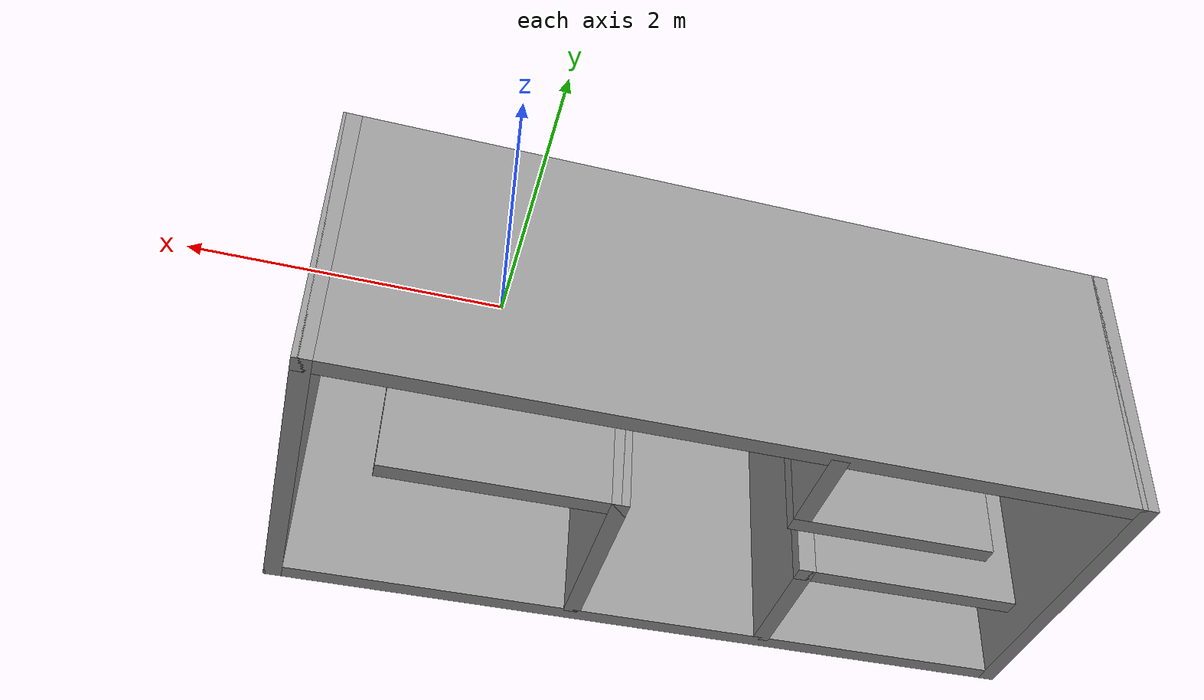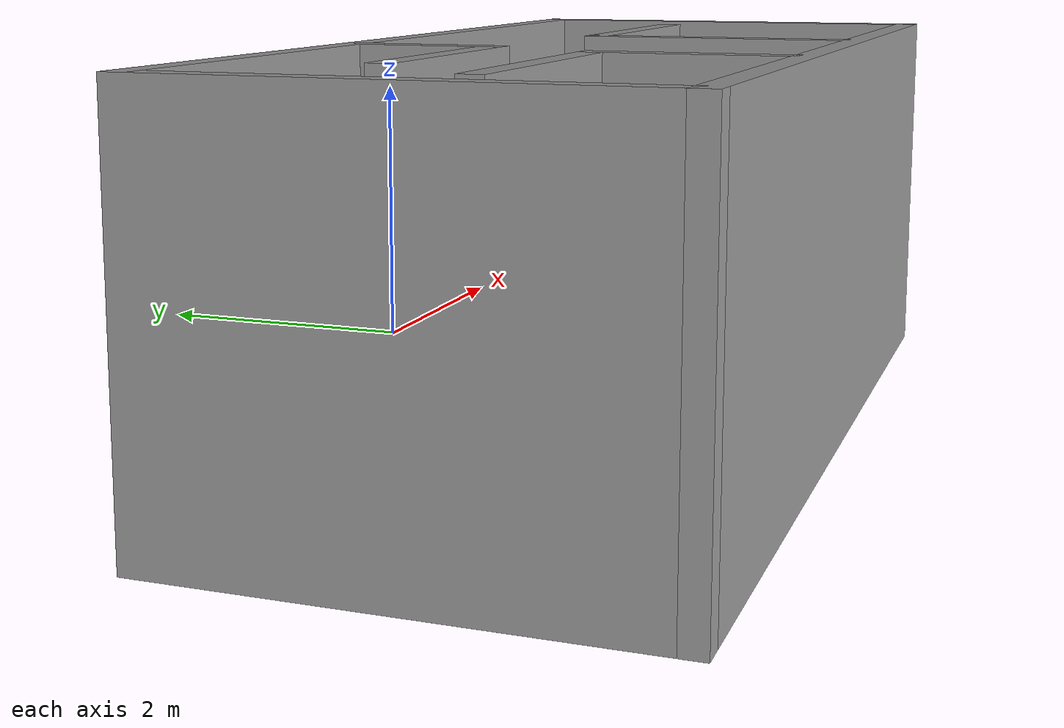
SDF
<?xml version='1.0'?>
<sdf version='1.7'>
  <model name='Room'>
    <pose>-2.08 -1.9625 0 0 -0 0</pose>
    <link name='Wall_1'>
      <collision name='Wall_1_Collision'>
        <geometry>
          <box>
            <size>6.75 0.15 2.5</size>
          </box>
        </geometry>
        <pose>0 0 1.25 0 -0 0</pose>
      </collision>
      <visual name='Wall_1_Visual'>
        <pose>0 0 1.25 0 -0 0</pose>
        <geometry>
          <box>
            <size>6.75 0.15 2.5</size>
          </box>
        </geometry>
        <material>
          <script>
            <uri>file://media/materials/scripts/gazebo.material</uri>
            <name>Gazebo/Grey</name>
          </script>
          <ambient>1 1 1 1</ambient>
        </material>
        <meta>
          <layer>0</layer>
        </meta>
      </visual>
      <pose>0 0.9625 0 0 -0 0</pose>
    </link>
    <link name='Wall_10'>
      <collision name='Wall_10_Collision'>
        <geometry>
          <box>
            <size>2 0.15 2.5</size>
          </box>
        </geometry>
        <pose>0 0 1.25 0 -0 0</pose>
      </collision>
      <visual name='Wall_10_Visual'>
        <pose>0 0 1.25 0 -0 0</pose>
        <geometry>
          <box>
            <size>2 0.15 2.5</size>
          </box>
        </geometry>
        <material>
          <script>
            <uri>file://media/materials/scripts/gazebo.material</uri>
            <name>Gazebo/Grey</name>
          </script>
          <ambient>1 1 1 1</ambient>
        </material>
        <meta>
          <layer>0</layer>
        </meta>
      </visual>
      <pose>-1.935 -0.6775 0 0 -0 3.14159</pose>
    </link>
    <link name='Wall_13'>
      <collision name='Wall_13_Collision'>
        <geometry>
          <box>
            <size>1.75 0.15 2.5</size>
          </box>
        </geometry>
        <pose>0 0 1.25 0 -0 0</pose>
      </collision>
      <visual name='Wall_13_Visual'>
        <pose>0 0 1.25 0 -0 0</pose>
        <geometry>
          <box>
            <size>1.75 0.15 2.5</size>
          </box>
        </geometry>
        <material>
          <script>
            <uri>file://media/materials/scripts/gazebo.material</uri>
            <name>Gazebo/Grey</name>
          </script>
          <ambient>1 1 1 1</ambient>
        </material>
        <meta>
          <layer>0</layer>
        </meta>
      </visual>
      <pose>0.74 -0.9675 0 0 -0 1.5708</pose>
    </link>
    <link name='Wall_14'>
      <collision name='Wall_14_Collision'>
        <geometry>
          <box>
            <size>2 0.15 2.5</size>
          </box>
        </geometry>
        <pose>0 0 1.25 0 -0 0</pose>
      </collision>
      <visual name='Wall_14_Visual'>
        <pose>0 0 1.25 0 -0 0</pose>
        <geometry>
          <box>
            <size>2 0.15 2.5</size>
          </box>
        </geometry>
        <material>
          <script>
            <uri>file://media/materials/scripts/gazebo.material</uri>
            <name>Gazebo/Grey</name>
          </script>
          <ambient>1 1 1 1</ambient>
        </material>
        <meta>
          <layer>0</layer>
        </meta>
      </visual>
      <pose>1.665 -0.1675 0 0 -0 0</pose>
    </link>
    <link name='Wall_2'>
      <collision name='Wall_2_Collision'>
        <geometry>
          <box>
            <size>3 0.15 2.5</size>
          </box>
        </geometry>
        <pose>0 0 1.25 0 -0 0</pose>
      </collision>
      <visual name='Wall_2_Visual'>
        <pose>0 0 1.25 0 -0 0</pose>
        <geometry>
          <box>
            <size>3 0.15 2.5</size>
          </box>
        </geometry>
        <material>
          <script>
            <uri>file://media/materials/scripts/gazebo.material</uri>
            <name>Gazebo/Grey</name>
          </script>
          <ambient>1 1 1 1</ambient>
        </material>
        <meta>
          <layer>0</layer>
        </meta>
      </visual>
      <pose>3.3 -0.4625 0 0 -0 -1.5708</pose>
    </link>
    <link name='Wall_3'>
      <collision name='Wall_3_Collision'>
        <geometry>
          <box>
            <size>6.75 0.15 2.5</size>
          </box>
        </geometry>
        <pose>0 0 1.25 0 -0 0</pose>
      </collision>
      <visual name='Wall_3_Visual'>
        <pose>0 0 1.25 0 -0 0</pose>
        <geometry>
          <box>
            <size>6.75 0.15 2.5</size>
          </box>
        </geometry>
        <material>
          <script>
            <uri>file://media/materials/scripts/gazebo.material</uri>
            <name>Gazebo/Grey</name>
          </script>
          <ambient>1 1 1 1</ambient>
        </material>
        <meta>
          <layer>0</layer>
        </meta>
      </visual>
      <pose>0 -1.8875 0 0 -0 3.14159</pose>
    </link>
    <link name='Wall_4'>
      <collision name='Wall_4_Collision'>
        <geometry>
          <box>
            <size>3 0.15 2.5</size>
          </box>
        </geometry>
        <pose>0 0 1.25 0 -0 0</pose>
      </collision>
      <visual name='Wall_4_Visual'>
        <pose>0 0 1.25 0 -0 0</pose>
        <geometry>
          <box>
            <size>3 0.15 2.5</size>
          </box>
        </geometry>
        <material>
          <script>
            <uri>file://media/materials/scripts/gazebo.material</uri>
            <name>Gazebo/Grey</name>
          </script>
          <ambient>1 1 1 1</ambient>
        </material>
        <meta>
          <layer>0</layer>
        </meta>
      </visual>
      <pose>-3.3 -0.4625 0 0 -0 1.5708</pose>
    </link>
    <link name='Wall_6'>
      <collision name='Wall_6_Collision'>
        <geometry>
          <box>
            <size>1 0.15 2.5</size>
          </box>
        </geometry>
        <pose>0 0 1.25 0 -0 0</pose>
      </collision>
      <visual name='Wall_6_Visual'>
        <pose>0 0 1.25 0 -0 0</pose>
        <geometry>
          <box>
            <size>1 0.15 2.5</size>
          </box>
        </geometry>
        <material>
          <script>
            <uri>file://media/materials/scripts/gazebo.material</uri>
            <name>Gazebo/Grey</name>
          </script>
          <ambient>1 1 1 1</ambient>
        </material>
        <meta>
          <layer>0</layer>
        </meta>
      </visual>
      <pose>-0.7 0.4675 0 0 -0 -1.5708</pose>
    </link>
    <link name='Wall_7'>
      <collision name='Wall_7_Collision'>
        <geometry>
          <box>
            <size>1.75 0.15 2.5</size>
          </box>
        </geometry>
        <pose>0 0 1.25 0 -0 0</pose>
      </collision>
      <visual name='Wall_7_Visual'>
        <pose>0 0 1.25 0 -0 0</pose>
        <geometry>
          <box>
            <size>1.75 0.15 2.5</size>
          </box>
        </geometry>
        <material>
          <script>
            <uri>file://media/materials/scripts/gazebo.material</uri>
            <name>Gazebo/Grey</name>
          </script>
          <ambient>1 1 1 1</ambient>
        </material>
        <meta>
          <layer>0</layer>
        </meta>
      </visual>
      <pose>-1.5 0.0425 0 0 -0 3.14159</pose>
    </link>
    <link name='Wall_9'>
      <collision name='Wall_9_Collision'>
        <geometry>
          <box>
            <size>1.25 0.15 2.5</size>
          </box>
        </geometry>
        <pose>0 0 1.25 0 -0 0</pose>
      </collision>
      <visual name='Wall_9_Visual'>
        <pose>0 0 1.25 0 -0 0</pose>
        <geometry>
          <box>
            <size>1.25 0.15 2.5</size>
          </box>
        </geometry>
        <material>
          <script>
            <uri>file://media/materials/scripts/gazebo.material</uri>
            <name>Gazebo/Grey</name>
          </script>
          <ambient>1 1 1 1</ambient>
        </material>
        <meta>
          <layer>0</layer>
        </meta>
      </visual>
      <pose>-1.01 -1.2275 0 0 -0 1.5708</pose>
    </link>
    <static>1</static>
  </model>
</sdf>
